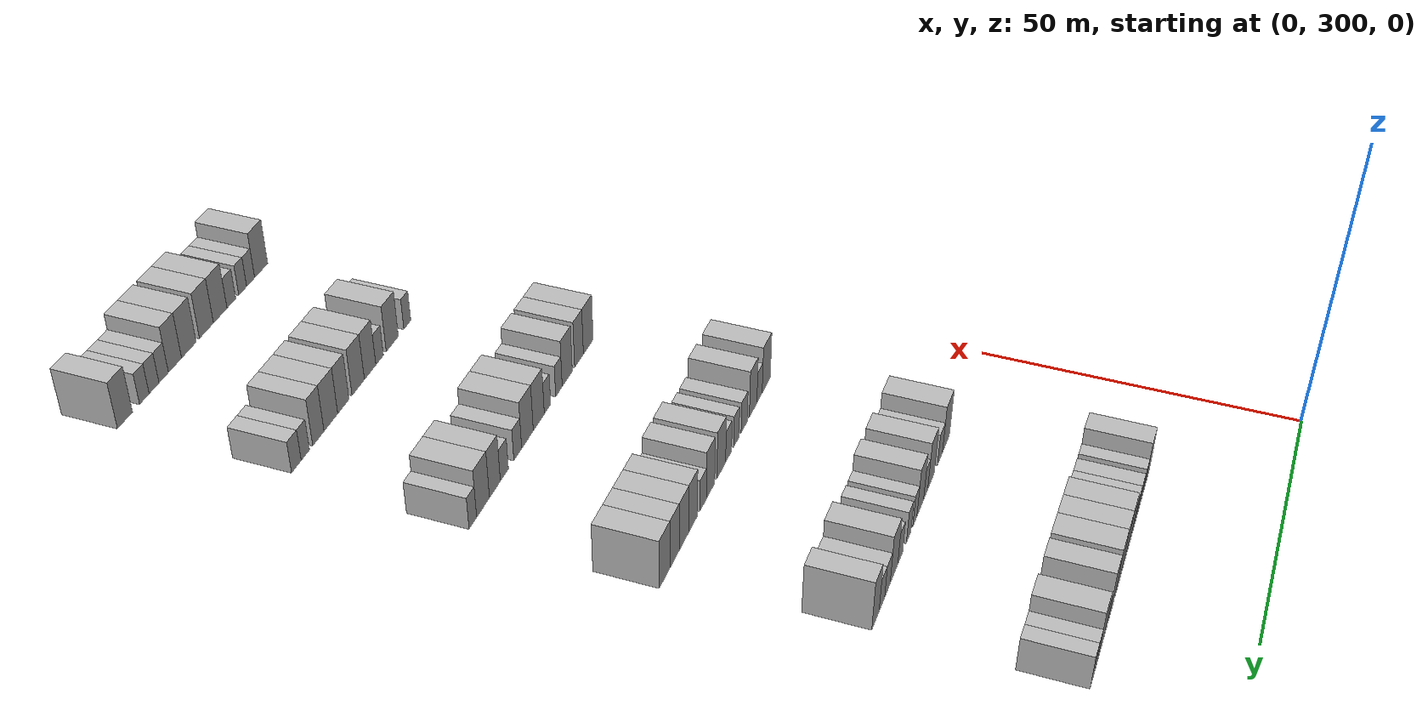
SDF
<sdf version="1.6">
 <world name="default">
  <model name="building_188">
   <static>1</static>
   <pose>25.0000 321.9324 0 0.000000 0.000000 0.000000</pose>
   <link name="link">
    <pose>0 0 4.50 0 0 0</pose>
    <collision name="collision"><geometry><box><size>10.0000 3.8410 9.0000</size></box></geometry></collision>
    <visual name="visual">
     <cast_shadows>0</cast_shadows>
     <geometry><box><size>10.0000 3.8410 9.0000</size></box></geometry>
     <material>
      <script>
       <uri>model://HANNAS_wall/materials/scripts</uri>
       <uri>model://HANNAS_wall/materials/textures</uri>
       <name>vrc/HANNAS_wall</name>
      </script>
     </material>
    </visual>
   </link>
  </model>
  <model name="building_189">
   <static>1</static>
   <pose>25.0000 325.0647 0 0.000000 0.000000 0.000000</pose>
   <link name="link">
    <pose>0 0 3.00 0 0 0</pose>
    <collision name="collision"><geometry><box><size>10.0000 2.4237 6.0000</size></box></geometry></collision>
    <visual name="visual">
     <cast_shadows>0</cast_shadows>
     <geometry><box><size>10.0000 2.4237 6.0000</size></box></geometry>
     <material>
      <script>
       <uri>model://HANNAS_wall/materials/scripts</uri>
       <uri>model://HANNAS_wall/materials/textures</uri>
       <name>vrc/HANNAS_wall</name>
      </script>
     </material>
    </visual>
   </link>
  </model>
  <model name="building_190">
   <static>1</static>
   <pose>25.0000 328.6824 0 0.000000 0.000000 0.000000</pose>
   <link name="link">
    <pose>0 0 3.00 0 0 0</pose>
    <collision name="collision"><geometry><box><size>10.0000 2.8117 6.0000</size></box></geometry></collision>
    <visual name="visual">
     <cast_shadows>0</cast_shadows>
     <geometry><box><size>10.0000 2.8117 6.0000</size></box></geometry>
     <material>
      <script>
       <uri>model://HANNAS_wall/materials/scripts</uri>
       <uri>model://HANNAS_wall/materials/textures</uri>
       <name>vrc/HANNAS_wall</name>
      </script>
     </material>
    </visual>
   </link>
  </model>
  <model name="building_191">
   <static>1</static>
   <pose>25.0000 331.3375 0 0.000000 0.000000 0.000000</pose>
   <link name="link">
    <pose>0 0 3.00 0 0 0</pose>
    <collision name="collision"><geometry><box><size>10.0000 2.4985 6.0000</size></box></geometry></collision>
    <visual name="visual">
     <cast_shadows>0</cast_shadows>
     <geometry><box><size>10.0000 2.4985 6.0000</size></box></geometry>
     <material>
      <script>
       <uri>model://HANNAS_wall/materials/scripts</uri>
       <uri>model://HANNAS_wall/materials/textures</uri>
       <name>vrc/HANNAS_wall</name>
      </script>
     </material>
    </visual>
   </link>
  </model>
  <model name="building_192">
   <static>1</static>
   <pose>25.0000 333.8884 0 0.000000 0.000000 0.000000</pose>
   <link name="link">
    <pose>0 0 3.00 0 0 0</pose>
    <collision name="collision"><geometry><box><size>10.0000 2.6032 6.0000</size></box></geometry></collision>
    <visual name="visual">
     <cast_shadows>0</cast_shadows>
     <geometry><box><size>10.0000 2.6032 6.0000</size></box></geometry>
     <material>
      <script>
       <uri>model://HANNAS_wall/materials/scripts</uri>
       <uri>model://HANNAS_wall/materials/textures</uri>
       <name>vrc/HANNAS_wall</name>
      </script>
     </material>
    </visual>
   </link>
  </model>
  <model name="building_193">
   <static>1</static>
   <pose>25.0000 337.1833 0 0.000000 0.000000 0.000000</pose>
   <link name="link">
    <pose>0 0 4.50 0 0 0</pose>
    <collision name="collision"><geometry><box><size>10.0000 3.9865 9.0000</size></box></geometry></collision>
    <visual name="visual">
     <cast_shadows>0</cast_shadows>
     <geometry><box><size>10.0000 3.9865 9.0000</size></box></geometry>
     <material>
      <script>
       <uri>model://HANNAS_wall/materials/scripts</uri>
       <uri>model://HANNAS_wall/materials/textures</uri>
       <name>vrc/HANNAS_wall</name>
      </script>
     </material>
    </visual>
   </link>
  </model>
  <model name="building_194">
   <static>1</static>
   <pose>25.0000 341.1651 0 0.000000 0.000000 0.000000</pose>
   <link name="link">
    <pose>0 0 4.50 0 0 0</pose>
    <collision name="collision"><geometry><box><size>10.0000 3.9771 9.0000</size></box></geometry></collision>
    <visual name="visual">
     <cast_shadows>0</cast_shadows>
     <geometry><box><size>10.0000 3.9771 9.0000</size></box></geometry>
     <material>
      <script>
       <uri>model://HANNAS_wall/materials/scripts</uri>
       <uri>model://HANNAS_wall/materials/textures</uri>
       <name>vrc/HANNAS_wall</name>
      </script>
     </material>
    </visual>
   </link>
  </model>
  <model name="building_195">
   <static>1</static>
   <pose>25.0000 345.3907 0 0.000000 0.000000 0.000000</pose>
   <link name="link">
    <pose>0 0 4.50 0 0 0</pose>
    <collision name="collision"><geometry><box><size>10.0000 4.4739 9.0000</size></box></geometry></collision>
    <visual name="visual">
     <cast_shadows>0</cast_shadows>
     <geometry><box><size>10.0000 4.4739 9.0000</size></box></geometry>
     <material>
      <script>
       <uri>model://HANNAS_wall/materials/scripts</uri>
       <uri>model://HANNAS_wall/materials/textures</uri>
       <name>vrc/HANNAS_wall</name>
      </script>
     </material>
    </visual>
   </link>
  </model>
  <model name="building_196">
   <static>1</static>
   <pose>25.0000 350.5419 0 0.000000 0.000000 0.000000</pose>
   <link name="link">
    <pose>0 0 4.50 0 0 0</pose>
    <collision name="collision"><geometry><box><size>10.0000 3.8285 9.0000</size></box></geometry></collision>
    <visual name="visual">
     <cast_shadows>0</cast_shadows>
     <geometry><box><size>10.0000 3.8285 9.0000</size></box></geometry>
     <material>
      <script>
       <uri>model://HANNAS_wall/materials/scripts</uri>
       <uri>model://HANNAS_wall/materials/textures</uri>
       <name>vrc/HANNAS_wall</name>
      </script>
     </material>
    </visual>
   </link>
  </model>
  <model name="building_197">
   <static>1</static>
   <pose>25.0000 354.7625 0 0.000000 0.000000 0.000000</pose>
   <link name="link">
    <pose>0 0 3.00 0 0 0</pose>
    <collision name="collision"><geometry><box><size>10.0000 2.6127 6.0000</size></box></geometry></collision>
    <visual name="visual">
     <cast_shadows>0</cast_shadows>
     <geometry><box><size>10.0000 2.6127 6.0000</size></box></geometry>
     <material>
      <script>
       <uri>model://HANNAS_wall/materials/scripts</uri>
       <uri>model://HANNAS_wall/materials/textures</uri>
       <name>vrc/HANNAS_wall</name>
      </script>
     </material>
    </visual>
   </link>
  </model>
  <model name="building_198">
   <static>1</static>
   <pose>25.0000 358.1969 0 0.000000 0.000000 0.000000</pose>
   <link name="link">
    <pose>0 0 4.50 0 0 0</pose>
    <collision name="collision"><geometry><box><size>10.0000 4.2560 9.0000</size></box></geometry></collision>
    <visual name="visual">
     <cast_shadows>0</cast_shadows>
     <geometry><box><size>10.0000 4.2560 9.0000</size></box></geometry>
     <material>
      <script>
       <uri>model://HANNAS_wall/materials/scripts</uri>
       <uri>model://HANNAS_wall/materials/textures</uri>
       <name>vrc/HANNAS_wall</name>
      </script>
     </material>
    </visual>
   </link>
  </model>
  <model name="building_199">
   <static>1</static>
   <pose>25.0000 361.6335 0 0.000000 0.000000 0.000000</pose>
   <link name="link">
    <pose>0 0 3.00 0 0 0</pose>
    <collision name="collision"><geometry><box><size>10.0000 2.6173 6.0000</size></box></geometry></collision>
    <visual name="visual">
     <cast_shadows>0</cast_shadows>
     <geometry><box><size>10.0000 2.6173 6.0000</size></box></geometry>
     <material>
      <script>
       <uri>model://HANNAS_wall/materials/scripts</uri>
       <uri>model://HANNAS_wall/materials/textures</uri>
       <name>vrc/HANNAS_wall</name>
      </script>
     </material>
    </visual>
   </link>
  </model>
  <model name="building_200">
   <static>1</static>
   <pose>25.0000 364.3236 0 0.000000 0.000000 0.000000</pose>
   <link name="link">
    <pose>0 0 3.00 0 0 0</pose>
    <collision name="collision"><geometry><box><size>10.0000 2.7627 6.0000</size></box></geometry></collision>
    <visual name="visual">
     <cast_shadows>0</cast_shadows>
     <geometry><box><size>10.0000 2.7627 6.0000</size></box></geometry>
     <material>
      <script>
       <uri>model://HANNAS_wall/materials/scripts</uri>
       <uri>model://HANNAS_wall/materials/textures</uri>
       <name>vrc/HANNAS_wall</name>
      </script>
     </material>
    </visual>
   </link>
  </model>
  <model name="building_427">
   <static>1</static>
   <pose>55.0000 323.9059 0 0.000000 0.000000 0.000000</pose>
   <link name="link">
    <pose>0 0 4.50 0 0 0</pose>
    <collision name="collision"><geometry><box><size>10.0000 4.3552 9.0000</size></box></geometry></collision>
    <visual name="visual">
     <cast_shadows>0</cast_shadows>
     <geometry><box><size>10.0000 4.3552 9.0000</size></box></geometry>
     <material>
      <script>
       <uri>model://HANNAS_wall/materials/scripts</uri>
       <uri>model://HANNAS_wall/materials/textures</uri>
       <name>vrc/HANNAS_wall</name>
      </script>
     </material>
    </visual>
   </link>
  </model>
  <model name="building_428">
   <static>1</static>
   <pose>55.0000 327.5647 0 0.000000 0.000000 0.000000</pose>
   <link name="link">
    <pose>0 0 3.00 0 0 0</pose>
    <collision name="collision"><geometry><box><size>10.0000 2.9624 6.0000</size></box></geometry></collision>
    <visual name="visual">
     <cast_shadows>0</cast_shadows>
     <geometry><box><size>10.0000 2.9624 6.0000</size></box></geometry>
     <material>
      <script>
       <uri>model://HANNAS_wall/materials/scripts</uri>
       <uri>model://HANNAS_wall/materials/textures</uri>
       <name>vrc/HANNAS_wall</name>
      </script>
     </material>
    </visual>
   </link>
  </model>
  <model name="building_429">
   <static>1</static>
   <pose>55.0000 332.9562 0 0.000000 0.000000 0.000000</pose>
   <link name="link">
    <pose>0 0 4.50 0 0 0</pose>
    <collision name="collision"><geometry><box><size>10.0000 3.8205 9.0000</size></box></geometry></collision>
    <visual name="visual">
     <cast_shadows>0</cast_shadows>
     <geometry><box><size>10.0000 3.8205 9.0000</size></box></geometry>
     <material>
      <script>
       <uri>model://HANNAS_wall/materials/scripts</uri>
       <uri>model://HANNAS_wall/materials/textures</uri>
       <name>vrc/HANNAS_wall</name>
      </script>
     </material>
    </visual>
   </link>
  </model>
  <model name="building_430">
   <static>1</static>
   <pose>55.0000 336.0881 0 0.000000 0.000000 0.000000</pose>
   <link name="link">
    <pose>0 0 3.00 0 0 0</pose>
    <collision name="collision"><geometry><box><size>10.0000 2.4435 6.0000</size></box></geometry></collision>
    <visual name="visual">
     <cast_shadows>0</cast_shadows>
     <geometry><box><size>10.0000 2.4435 6.0000</size></box></geometry>
     <material>
      <script>
       <uri>model://HANNAS_wall/materials/scripts</uri>
       <uri>model://HANNAS_wall/materials/textures</uri>
       <name>vrc/HANNAS_wall</name>
      </script>
     </material>
    </visual>
   </link>
  </model>
  <model name="building_431">
   <static>1</static>
   <pose>55.0000 339.2111 0 0.000000 0.000000 0.000000</pose>
   <link name="link">
    <pose>0 0 4.50 0 0 0</pose>
    <collision name="collision"><geometry><box><size>10.0000 3.8025 9.0000</size></box></geometry></collision>
    <visual name="visual">
     <cast_shadows>0</cast_shadows>
     <geometry><box><size>10.0000 3.8025 9.0000</size></box></geometry>
     <material>
      <script>
       <uri>model://HANNAS_wall/materials/scripts</uri>
       <uri>model://HANNAS_wall/materials/textures</uri>
       <name>vrc/HANNAS_wall</name>
      </script>
     </material>
    </visual>
   </link>
  </model>
  <model name="building_432">
   <static>1</static>
   <pose>55.0000 342.3207 0 0.000000 0.000000 0.000000</pose>
   <link name="link">
    <pose>0 0 3.00 0 0 0</pose>
    <collision name="collision"><geometry><box><size>10.0000 2.4166 6.0000</size></box></geometry></collision>
    <visual name="visual">
     <cast_shadows>0</cast_shadows>
     <geometry><box><size>10.0000 2.4166 6.0000</size></box></geometry>
     <material>
      <script>
       <uri>model://HANNAS_wall/materials/scripts</uri>
       <uri>model://HANNAS_wall/materials/textures</uri>
       <name>vrc/HANNAS_wall</name>
      </script>
     </material>
    </visual>
   </link>
  </model>
  <model name="building_433">
   <static>1</static>
   <pose>55.0000 345.7900 0 0.000000 0.000000 0.000000</pose>
   <link name="link">
    <pose>0 0 3.00 0 0 0</pose>
    <collision name="collision"><geometry><box><size>10.0000 2.5220 6.0000</size></box></geometry></collision>
    <visual name="visual">
     <cast_shadows>0</cast_shadows>
     <geometry><box><size>10.0000 2.5220 6.0000</size></box></geometry>
     <material>
      <script>
       <uri>model://HANNAS_wall/materials/scripts</uri>
       <uri>model://HANNAS_wall/materials/textures</uri>
       <name>vrc/HANNAS_wall</name>
      </script>
     </material>
    </visual>
   </link>
  </model>
  <model name="building_434">
   <static>1</static>
   <pose>55.0000 350.3980 0 0.000000 0.000000 0.000000</pose>
   <link name="link">
    <pose>0 0 3.00 0 0 0</pose>
    <collision name="collision"><geometry><box><size>10.0000 2.6938 6.0000</size></box></geometry></collision>
    <visual name="visual">
     <cast_shadows>0</cast_shadows>
     <geometry><box><size>10.0000 2.6938 6.0000</size></box></geometry>
     <material>
      <script>
       <uri>model://HANNAS_wall/materials/scripts</uri>
       <uri>model://HANNAS_wall/materials/textures</uri>
       <name>vrc/HANNAS_wall</name>
      </script>
     </material>
    </visual>
   </link>
  </model>
  <model name="building_435">
   <static>1</static>
   <pose>55.0000 353.7789 0 0.000000 0.000000 0.000000</pose>
   <link name="link">
    <pose>0 0 4.50 0 0 0</pose>
    <collision name="collision"><geometry><box><size>10.0000 4.0680 9.0000</size></box></geometry></collision>
    <visual name="visual">
     <cast_shadows>0</cast_shadows>
     <geometry><box><size>10.0000 4.0680 9.0000</size></box></geometry>
     <material>
      <script>
       <uri>model://HANNAS_wall/materials/scripts</uri>
       <uri>model://HANNAS_wall/materials/textures</uri>
       <name>vrc/HANNAS_wall</name>
      </script>
     </material>
    </visual>
   </link>
  </model>
  <model name="building_436">
   <static>1</static>
   <pose>55.0000 357.2287 0 0.000000 0.000000 0.000000</pose>
   <link name="link">
    <pose>0 0 3.00 0 0 0</pose>
    <collision name="collision"><geometry><box><size>10.0000 2.8316 6.0000</size></box></geometry></collision>
    <visual name="visual">
     <cast_shadows>0</cast_shadows>
     <geometry><box><size>10.0000 2.8316 6.0000</size></box></geometry>
     <material>
      <script>
       <uri>model://HANNAS_wall/materials/scripts</uri>
       <uri>model://HANNAS_wall/materials/textures</uri>
       <name>vrc/HANNAS_wall</name>
      </script>
     </material>
    </visual>
   </link>
  </model>
  <model name="building_437">
   <static>1</static>
   <pose>55.0000 360.0771 0 0.000000 0.000000 0.000000</pose>
   <link name="link">
    <pose>0 0 3.00 0 0 0</pose>
    <collision name="collision"><geometry><box><size>10.0000 2.8652 6.0000</size></box></geometry></collision>
    <visual name="visual">
     <cast_shadows>0</cast_shadows>
     <geometry><box><size>10.0000 2.8652 6.0000</size></box></geometry>
     <material>
      <script>
       <uri>model://HANNAS_wall/materials/scripts</uri>
       <uri>model://HANNAS_wall/materials/textures</uri>
       <name>vrc/HANNAS_wall</name>
      </script>
     </material>
    </visual>
   </link>
  </model>
  <model name="building_438">
   <static>1</static>
   <pose>55.0000 363.3722 0 0.000000 0.000000 0.000000</pose>
   <link name="link">
    <pose>0 0 4.50 0 0 0</pose>
    <collision name="collision"><geometry><box><size>10.0000 3.7250 9.0000</size></box></geometry></collision>
    <visual name="visual">
     <cast_shadows>0</cast_shadows>
     <geometry><box><size>10.0000 3.7250 9.0000</size></box></geometry>
     <material>
      <script>
       <uri>model://HANNAS_wall/materials/scripts</uri>
       <uri>model://HANNAS_wall/materials/textures</uri>
       <name>vrc/HANNAS_wall</name>
      </script>
     </material>
    </visual>
   </link>
  </model>
  <model name="building_647">
   <static>1</static>
   <pose>85.0000 319.7177 0 0.000000 0.000000 0.000000</pose>
   <link name="link">
    <pose>0 0 4.50 0 0 0</pose>
    <collision name="collision"><geometry><box><size>10.0000 4.1241 9.0000</size></box></geometry></collision>
    <visual name="visual">
     <cast_shadows>0</cast_shadows>
     <geometry><box><size>10.0000 4.1241 9.0000</size></box></geometry>
     <material>
      <script>
       <uri>model://HANNAS_wall/materials/scripts</uri>
       <uri>model://HANNAS_wall/materials/textures</uri>
       <name>vrc/HANNAS_wall</name>
      </script>
     </material>
    </visual>
   </link>
  </model>
  <model name="building_648">
   <static>1</static>
   <pose>85.0000 323.0876 0 0.000000 0.000000 0.000000</pose>
   <link name="link">
    <pose>0 0 3.00 0 0 0</pose>
    <collision name="collision"><geometry><box><size>10.0000 2.6156 6.0000</size></box></geometry></collision>
    <visual name="visual">
     <cast_shadows>0</cast_shadows>
     <geometry><box><size>10.0000 2.6156 6.0000</size></box></geometry>
     <material>
      <script>
       <uri>model://HANNAS_wall/materials/scripts</uri>
       <uri>model://HANNAS_wall/materials/textures</uri>
       <name>vrc/HANNAS_wall</name>
      </script>
     </material>
    </visual>
   </link>
  </model>
  <model name="building_649">
   <static>1</static>
   <pose>85.0000 326.2399 0 0.000000 0.000000 0.000000</pose>
   <link name="link">
    <pose>0 0 4.50 0 0 0</pose>
    <collision name="collision"><geometry><box><size>10.0000 3.6889 9.0000</size></box></geometry></collision>
    <visual name="visual">
     <cast_shadows>0</cast_shadows>
     <geometry><box><size>10.0000 3.6889 9.0000</size></box></geometry>
     <material>
      <script>
       <uri>model://HANNAS_wall/materials/scripts</uri>
       <uri>model://HANNAS_wall/materials/textures</uri>
       <name>vrc/HANNAS_wall</name>
      </script>
     </material>
    </visual>
   </link>
  </model>
  <model name="building_650">
   <static>1</static>
   <pose>85.0000 330.5644 0 0.000000 0.000000 0.000000</pose>
   <link name="link">
    <pose>0 0 3.00 0 0 0</pose>
    <collision name="collision"><geometry><box><size>10.0000 2.9602 6.0000</size></box></geometry></collision>
    <visual name="visual">
     <cast_shadows>0</cast_shadows>
     <geometry><box><size>10.0000 2.9602 6.0000</size></box></geometry>
     <material>
      <script>
       <uri>model://HANNAS_wall/materials/scripts</uri>
       <uri>model://HANNAS_wall/materials/textures</uri>
       <name>vrc/HANNAS_wall</name>
      </script>
     </material>
    </visual>
   </link>
  </model>
  <model name="building_651">
   <static>1</static>
   <pose>85.0000 334.2911 0 0.000000 0.000000 0.000000</pose>
   <link name="link">
    <pose>0 0 3.00 0 0 0</pose>
    <collision name="collision"><geometry><box><size>10.0000 2.4932 6.0000</size></box></geometry></collision>
    <visual name="visual">
     <cast_shadows>0</cast_shadows>
     <geometry><box><size>10.0000 2.4932 6.0000</size></box></geometry>
     <material>
      <script>
       <uri>model://HANNAS_wall/materials/scripts</uri>
       <uri>model://HANNAS_wall/materials/textures</uri>
       <name>vrc/HANNAS_wall</name>
      </script>
     </material>
    </visual>
   </link>
  </model>
  <model name="building_652">
   <static>1</static>
   <pose>85.0000 337.9130 0 0.000000 0.000000 0.000000</pose>
   <link name="link">
    <pose>0 0 3.00 0 0 0</pose>
    <collision name="collision"><geometry><box><size>10.0000 2.7507 6.0000</size></box></geometry></collision>
    <visual name="visual">
     <cast_shadows>0</cast_shadows>
     <geometry><box><size>10.0000 2.7507 6.0000</size></box></geometry>
     <material>
      <script>
       <uri>model://HANNAS_wall/materials/scripts</uri>
       <uri>model://HANNAS_wall/materials/textures</uri>
       <name>vrc/HANNAS_wall</name>
      </script>
     </material>
    </visual>
   </link>
  </model>
  <model name="building_653">
   <static>1</static>
   <pose>85.0000 341.2763 0 0.000000 0.000000 0.000000</pose>
   <link name="link">
    <pose>0 0 4.50 0 0 0</pose>
    <collision name="collision"><geometry><box><size>10.0000 3.9759 9.0000</size></box></geometry></collision>
    <visual name="visual">
     <cast_shadows>0</cast_shadows>
     <geometry><box><size>10.0000 3.9759 9.0000</size></box></geometry>
     <material>
      <script>
       <uri>model://HANNAS_wall/materials/scripts</uri>
       <uri>model://HANNAS_wall/materials/textures</uri>
       <name>vrc/HANNAS_wall</name>
      </script>
     </material>
    </visual>
   </link>
  </model>
  <model name="building_654">
   <static>1</static>
   <pose>85.0000 346.1178 0 0.000000 0.000000 0.000000</pose>
   <link name="link">
    <pose>0 0 4.50 0 0 0</pose>
    <collision name="collision"><geometry><box><size>10.0000 3.7070 9.0000</size></box></geometry></collision>
    <visual name="visual">
     <cast_shadows>0</cast_shadows>
     <geometry><box><size>10.0000 3.7070 9.0000</size></box></geometry>
     <material>
      <script>
       <uri>model://HANNAS_wall/materials/scripts</uri>
       <uri>model://HANNAS_wall/materials/textures</uri>
       <name>vrc/HANNAS_wall</name>
      </script>
     </material>
    </visual>
   </link>
  </model>
  <model name="building_655">
   <static>1</static>
   <pose>85.0000 349.4005 0 0.000000 0.000000 0.000000</pose>
   <link name="link">
    <pose>0 0 3.00 0 0 0</pose>
    <collision name="collision"><geometry><box><size>10.0000 2.8584 6.0000</size></box></geometry></collision>
    <visual name="visual">
     <cast_shadows>0</cast_shadows>
     <geometry><box><size>10.0000 2.8584 6.0000</size></box></geometry>
     <material>
      <script>
       <uri>model://HANNAS_wall/materials/scripts</uri>
       <uri>model://HANNAS_wall/materials/textures</uri>
       <name>vrc/HANNAS_wall</name>
      </script>
     </material>
    </visual>
   </link>
  </model>
  <model name="building_656">
   <static>1</static>
   <pose>85.0000 353.6460 0 0.000000 0.000000 0.000000</pose>
   <link name="link">
    <pose>0 0 4.50 0 0 0</pose>
    <collision name="collision"><geometry><box><size>10.0000 3.6326 9.0000</size></box></geometry></collision>
    <visual name="visual">
     <cast_shadows>0</cast_shadows>
     <geometry><box><size>10.0000 3.6326 9.0000</size></box></geometry>
     <material>
      <script>
       <uri>model://HANNAS_wall/materials/scripts</uri>
       <uri>model://HANNAS_wall/materials/textures</uri>
       <name>vrc/HANNAS_wall</name>
      </script>
     </material>
    </visual>
   </link>
  </model>
  <model name="building_657">
   <static>1</static>
   <pose>85.0000 357.5191 0 0.000000 0.000000 0.000000</pose>
   <link name="link">
    <pose>0 0 4.50 0 0 0</pose>
    <collision name="collision"><geometry><box><size>10.0000 4.1134 9.0000</size></box></geometry></collision>
    <visual name="visual">
     <cast_shadows>0</cast_shadows>
     <geometry><box><size>10.0000 4.1134 9.0000</size></box></geometry>
     <material>
      <script>
       <uri>model://HANNAS_wall/materials/scripts</uri>
       <uri>model://HANNAS_wall/materials/textures</uri>
       <name>vrc/HANNAS_wall</name>
      </script>
     </material>
    </visual>
   </link>
  </model>
  <model name="building_658">
   <static>1</static>
   <pose>85.0000 361.4610 0 0.000000 0.000000 0.000000</pose>
   <link name="link">
    <pose>0 0 4.50 0 0 0</pose>
    <collision name="collision"><geometry><box><size>10.0000 3.7704 9.0000</size></box></geometry></collision>
    <visual name="visual">
     <cast_shadows>0</cast_shadows>
     <geometry><box><size>10.0000 3.7704 9.0000</size></box></geometry>
     <material>
      <script>
       <uri>model://HANNAS_wall/materials/scripts</uri>
       <uri>model://HANNAS_wall/materials/textures</uri>
       <name>vrc/HANNAS_wall</name>
      </script>
     </material>
    </visual>
   </link>
  </model>
  <model name="building_659">
   <static>1</static>
   <pose>85.0000 365.4988 0 0.000000 0.000000 0.000000</pose>
   <link name="link">
    <pose>0 0 4.50 0 0 0</pose>
    <collision name="collision"><geometry><box><size>10.0000 4.3052 9.0000</size></box></geometry></collision>
    <visual name="visual">
     <cast_shadows>0</cast_shadows>
     <geometry><box><size>10.0000 4.3052 9.0000</size></box></geometry>
     <material>
      <script>
       <uri>model://HANNAS_wall/materials/scripts</uri>
       <uri>model://HANNAS_wall/materials/textures</uri>
       <name>vrc/HANNAS_wall</name>
      </script>
     </material>
    </visual>
   </link>
  </model>
  <model name="building_872">
   <static>1</static>
   <pose>115.0000 320.1477 0 0.000000 0.000000 0.000000</pose>
   <link name="link">
    <pose>0 0 4.50 0 0 0</pose>
    <collision name="collision"><geometry><box><size>10.0000 4.1419 9.0000</size></box></geometry></collision>
    <visual name="visual">
     <cast_shadows>0</cast_shadows>
     <geometry><box><size>10.0000 4.1419 9.0000</size></box></geometry>
     <material>
      <script>
       <uri>model://HANNAS_wall/materials/scripts</uri>
       <uri>model://HANNAS_wall/materials/textures</uri>
       <name>vrc/HANNAS_wall</name>
      </script>
     </material>
    </visual>
   </link>
  </model>
  <model name="building_873">
   <static>1</static>
   <pose>115.0000 324.0434 0 0.000000 0.000000 0.000000</pose>
   <link name="link">
    <pose>0 0 4.50 0 0 0</pose>
    <collision name="collision"><geometry><box><size>10.0000 3.6495 9.0000</size></box></geometry></collision>
    <visual name="visual">
     <cast_shadows>0</cast_shadows>
     <geometry><box><size>10.0000 3.6495 9.0000</size></box></geometry>
     <material>
      <script>
       <uri>model://HANNAS_wall/materials/scripts</uri>
       <uri>model://HANNAS_wall/materials/textures</uri>
       <name>vrc/HANNAS_wall</name>
      </script>
     </material>
    </visual>
   </link>
  </model>
  <model name="building_874">
   <static>1</static>
   <pose>115.0000 328.9407 0 0.000000 0.000000 0.000000</pose>
   <link name="link">
    <pose>0 0 4.50 0 0 0</pose>
    <collision name="collision"><geometry><box><size>10.0000 4.1451 9.0000</size></box></geometry></collision>
    <visual name="visual">
     <cast_shadows>0</cast_shadows>
     <geometry><box><size>10.0000 4.1451 9.0000</size></box></geometry>
     <material>
      <script>
       <uri>model://HANNAS_wall/materials/scripts</uri>
       <uri>model://HANNAS_wall/materials/textures</uri>
       <name>vrc/HANNAS_wall</name>
      </script>
     </material>
    </visual>
   </link>
  </model>
  <model name="building_875">
   <static>1</static>
   <pose>115.0000 332.3251 0 0.000000 0.000000 0.000000</pose>
   <link name="link">
    <pose>0 0 3.00 0 0 0</pose>
    <collision name="collision"><geometry><box><size>10.0000 2.6237 6.0000</size></box></geometry></collision>
    <visual name="visual">
     <cast_shadows>0</cast_shadows>
     <geometry><box><size>10.0000 2.6237 6.0000</size></box></geometry>
     <material>
      <script>
       <uri>model://HANNAS_wall/materials/scripts</uri>
       <uri>model://HANNAS_wall/materials/textures</uri>
       <name>vrc/HANNAS_wall</name>
      </script>
     </material>
    </visual>
   </link>
  </model>
  <model name="building_876">
   <static>1</static>
   <pose>115.0000 336.8960 0 0.000000 0.000000 0.000000</pose>
   <link name="link">
    <pose>0 0 3.00 0 0 0</pose>
    <collision name="collision"><geometry><box><size>10.0000 2.5181 6.0000</size></box></geometry></collision>
    <visual name="visual">
     <cast_shadows>0</cast_shadows>
     <geometry><box><size>10.0000 2.5181 6.0000</size></box></geometry>
     <material>
      <script>
       <uri>model://HANNAS_wall/materials/scripts</uri>
       <uri>model://HANNAS_wall/materials/textures</uri>
       <name>vrc/HANNAS_wall</name>
      </script>
     </material>
    </visual>
   </link>
  </model>
  <model name="building_877">
   <static>1</static>
   <pose>115.0000 340.2975 0 0.000000 0.000000 0.000000</pose>
   <link name="link">
    <pose>0 0 4.50 0 0 0</pose>
    <collision name="collision"><geometry><box><size>10.0000 4.2847 9.0000</size></box></geometry></collision>
    <visual name="visual">
     <cast_shadows>0</cast_shadows>
     <geometry><box><size>10.0000 4.2847 9.0000</size></box></geometry>
     <material>
      <script>
       <uri>model://HANNAS_wall/materials/scripts</uri>
       <uri>model://HANNAS_wall/materials/textures</uri>
       <name>vrc/HANNAS_wall</name>
      </script>
     </material>
    </visual>
   </link>
  </model>
  <model name="building_878">
   <static>1</static>
   <pose>115.0000 344.6491 0 0.000000 0.000000 0.000000</pose>
   <link name="link">
    <pose>0 0 4.50 0 0 0</pose>
    <collision name="collision"><geometry><box><size>10.0000 4.4185 9.0000</size></box></geometry></collision>
    <visual name="visual">
     <cast_shadows>0</cast_shadows>
     <geometry><box><size>10.0000 4.4185 9.0000</size></box></geometry>
     <material>
      <script>
       <uri>model://HANNAS_wall/materials/scripts</uri>
       <uri>model://HANNAS_wall/materials/textures</uri>
       <name>vrc/HANNAS_wall</name>
      </script>
     </material>
    </visual>
   </link>
  </model>
  <model name="building_879">
   <static>1</static>
   <pose>115.0000 348.3292 0 0.000000 0.000000 0.000000</pose>
   <link name="link">
    <pose>0 0 3.00 0 0 0</pose>
    <collision name="collision"><geometry><box><size>10.0000 2.9419 6.0000</size></box></geometry></collision>
    <visual name="visual">
     <cast_shadows>0</cast_shadows>
     <geometry><box><size>10.0000 2.9419 6.0000</size></box></geometry>
     <material>
      <script>
       <uri>model://HANNAS_wall/materials/scripts</uri>
       <uri>model://HANNAS_wall/materials/textures</uri>
       <name>vrc/HANNAS_wall</name>
      </script>
     </material>
    </visual>
   </link>
  </model>
  <model name="building_880">
   <static>1</static>
   <pose>115.0000 353.2696 0 0.000000 0.000000 0.000000</pose>
   <link name="link">
    <pose>0 0 3.00 0 0 0</pose>
    <collision name="collision"><geometry><box><size>10.0000 2.9389 6.0000</size></box></geometry></collision>
    <visual name="visual">
     <cast_shadows>0</cast_shadows>
     <geometry><box><size>10.0000 2.9389 6.0000</size></box></geometry>
     <material>
      <script>
       <uri>model://HANNAS_wall/materials/scripts</uri>
       <uri>model://HANNAS_wall/materials/textures</uri>
       <name>vrc/HANNAS_wall</name>
      </script>
     </material>
    </visual>
   </link>
  </model>
  <model name="building_881">
   <static>1</static>
   <pose>115.0000 356.6893 0 0.000000 0.000000 0.000000</pose>
   <link name="link">
    <pose>0 0 4.50 0 0 0</pose>
    <collision name="collision"><geometry><box><size>10.0000 3.9005 9.0000</size></box></geometry></collision>
    <visual name="visual">
     <cast_shadows>0</cast_shadows>
     <geometry><box><size>10.0000 3.9005 9.0000</size></box></geometry>
     <material>
      <script>
       <uri>model://HANNAS_wall/materials/scripts</uri>
       <uri>model://HANNAS_wall/materials/textures</uri>
       <name>vrc/HANNAS_wall</name>
      </script>
     </material>
    </visual>
   </link>
  </model>
  <model name="building_882">
   <static>1</static>
   <pose>115.0000 360.8888 0 0.000000 0.000000 0.000000</pose>
   <link name="link">
    <pose>0 0 4.50 0 0 0</pose>
    <collision name="collision"><geometry><box><size>10.0000 4.4984 9.0000</size></box></geometry></collision>
    <visual name="visual">
     <cast_shadows>0</cast_shadows>
     <geometry><box><size>10.0000 4.4984 9.0000</size></box></geometry>
     <material>
      <script>
       <uri>model://HANNAS_wall/materials/scripts</uri>
       <uri>model://HANNAS_wall/materials/textures</uri>
       <name>vrc/HANNAS_wall</name>
      </script>
     </material>
    </visual>
   </link>
  </model>
  <model name="building_883">
   <static>1</static>
   <pose>115.0000 364.4516 0 0.000000 0.000000 0.000000</pose>
   <link name="link">
    <pose>0 0 3.00 0 0 0</pose>
    <collision name="collision"><geometry><box><size>10.0000 2.6271 6.0000</size></box></geometry></collision>
    <visual name="visual">
     <cast_shadows>0</cast_shadows>
     <geometry><box><size>10.0000 2.6271 6.0000</size></box></geometry>
     <material>
      <script>
       <uri>model://HANNAS_wall/materials/scripts</uri>
       <uri>model://HANNAS_wall/materials/textures</uri>
       <name>vrc/HANNAS_wall</name>
      </script>
     </material>
    </visual>
   </link>
  </model>
  <model name="building_1106">
   <static>1</static>
   <pose>145.0000 324.8205 0 0.000000 0.000000 0.000000</pose>
   <link name="link">
    <pose>0 0 3.00 0 0 0</pose>
    <collision name="collision"><geometry><box><size>10.0000 2.5546 6.0000</size></box></geometry></collision>
    <visual name="visual">
     <cast_shadows>0</cast_shadows>
     <geometry><box><size>10.0000 2.5546 6.0000</size></box></geometry>
     <material>
      <script>
       <uri>model://HANNAS_wall/materials/scripts</uri>
       <uri>model://HANNAS_wall/materials/textures</uri>
       <name>vrc/HANNAS_wall</name>
      </script>
     </material>
    </visual>
   </link>
  </model>
  <model name="building_1107">
   <static>1</static>
   <pose>145.0000 330.2716 0 0.000000 0.000000 0.000000</pose>
   <link name="link">
    <pose>0 0 4.50 0 0 0</pose>
    <collision name="collision"><geometry><box><size>10.0000 4.3475 9.0000</size></box></geometry></collision>
    <visual name="visual">
     <cast_shadows>0</cast_shadows>
     <geometry><box><size>10.0000 4.3475 9.0000</size></box></geometry>
     <material>
      <script>
       <uri>model://HANNAS_wall/materials/scripts</uri>
       <uri>model://HANNAS_wall/materials/textures</uri>
       <name>vrc/HANNAS_wall</name>
      </script>
     </material>
    </visual>
   </link>
  </model>
  <model name="building_1108">
   <static>1</static>
   <pose>145.0000 334.7703 0 0.000000 0.000000 0.000000</pose>
   <link name="link">
    <pose>0 0 3.00 0 0 0</pose>
    <collision name="collision"><geometry><box><size>10.0000 2.6499 6.0000</size></box></geometry></collision>
    <visual name="visual">
     <cast_shadows>0</cast_shadows>
     <geometry><box><size>10.0000 2.6499 6.0000</size></box></geometry>
     <material>
      <script>
       <uri>model://HANNAS_wall/materials/scripts</uri>
       <uri>model://HANNAS_wall/materials/textures</uri>
       <name>vrc/HANNAS_wall</name>
      </script>
     </material>
    </visual>
   </link>
  </model>
  <model name="building_1109">
   <static>1</static>
   <pose>145.0000 338.0747 0 0.000000 0.000000 0.000000</pose>
   <link name="link">
    <pose>0 0 4.50 0 0 0</pose>
    <collision name="collision"><geometry><box><size>10.0000 3.9588 9.0000</size></box></geometry></collision>
    <visual name="visual">
     <cast_shadows>0</cast_shadows>
     <geometry><box><size>10.0000 3.9588 9.0000</size></box></geometry>
     <material>
      <script>
       <uri>model://HANNAS_wall/materials/scripts</uri>
       <uri>model://HANNAS_wall/materials/textures</uri>
       <name>vrc/HANNAS_wall</name>
      </script>
     </material>
    </visual>
   </link>
  </model>
  <model name="building_1110">
   <static>1</static>
   <pose>145.0000 342.1642 0 0.000000 0.000000 0.000000</pose>
   <link name="link">
    <pose>0 0 4.50 0 0 0</pose>
    <collision name="collision"><geometry><box><size>10.0000 4.2204 9.0000</size></box></geometry></collision>
    <visual name="visual">
     <cast_shadows>0</cast_shadows>
     <geometry><box><size>10.0000 4.2204 9.0000</size></box></geometry>
     <material>
      <script>
       <uri>model://HANNAS_wall/materials/scripts</uri>
       <uri>model://HANNAS_wall/materials/textures</uri>
       <name>vrc/HANNAS_wall</name>
      </script>
     </material>
    </visual>
   </link>
  </model>
  <model name="building_1111">
   <static>1</static>
   <pose>145.0000 347.1431 0 0.000000 0.000000 0.000000</pose>
   <link name="link">
    <pose>0 0 4.50 0 0 0</pose>
    <collision name="collision"><geometry><box><size>10.0000 3.7374 9.0000</size></box></geometry></collision>
    <visual name="visual">
     <cast_shadows>0</cast_shadows>
     <geometry><box><size>10.0000 3.7374 9.0000</size></box></geometry>
     <material>
      <script>
       <uri>model://HANNAS_wall/materials/scripts</uri>
       <uri>model://HANNAS_wall/materials/textures</uri>
       <name>vrc/HANNAS_wall</name>
      </script>
     </material>
    </visual>
   </link>
  </model>
  <model name="building_1112">
   <static>1</static>
   <pose>145.0000 351.2496 0 0.000000 0.000000 0.000000</pose>
   <link name="link">
    <pose>0 0 4.50 0 0 0</pose>
    <collision name="collision"><geometry><box><size>10.0000 4.4755 9.0000</size></box></geometry></collision>
    <visual name="visual">
     <cast_shadows>0</cast_shadows>
     <geometry><box><size>10.0000 4.4755 9.0000</size></box></geometry>
     <material>
      <script>
       <uri>model://HANNAS_wall/materials/scripts</uri>
       <uri>model://HANNAS_wall/materials/textures</uri>
       <name>vrc/HANNAS_wall</name>
      </script>
     </material>
    </visual>
   </link>
  </model>
  <model name="building_1113">
   <static>1</static>
   <pose>145.0000 355.2936 0 0.000000 0.000000 0.000000</pose>
   <link name="link">
    <pose>0 0 4.50 0 0 0</pose>
    <collision name="collision"><geometry><box><size>10.0000 3.6125 9.0000</size></box></geometry></collision>
    <visual name="visual">
     <cast_shadows>0</cast_shadows>
     <geometry><box><size>10.0000 3.6125 9.0000</size></box></geometry>
     <material>
      <script>
       <uri>model://HANNAS_wall/materials/scripts</uri>
       <uri>model://HANNAS_wall/materials/textures</uri>
       <name>vrc/HANNAS_wall</name>
      </script>
     </material>
    </visual>
   </link>
  </model>
  <model name="building_1114">
   <static>1</static>
   <pose>145.0000 359.3960 0 0.000000 0.000000 0.000000</pose>
   <link name="link">
    <pose>0 0 3.00 0 0 0</pose>
    <collision name="collision"><geometry><box><size>10.0000 2.5924 6.0000</size></box></geometry></collision>
    <visual name="visual">
     <cast_shadows>0</cast_shadows>
     <geometry><box><size>10.0000 2.5924 6.0000</size></box></geometry>
     <material>
      <script>
       <uri>model://HANNAS_wall/materials/scripts</uri>
       <uri>model://HANNAS_wall/materials/textures</uri>
       <name>vrc/HANNAS_wall</name>
      </script>
     </material>
    </visual>
   </link>
  </model>
  <model name="building_1115">
   <static>1</static>
   <pose>145.0000 362.1872 0 0.000000 0.000000 0.000000</pose>
   <link name="link">
    <pose>0 0 3.00 0 0 0</pose>
    <collision name="collision"><geometry><box><size>10.0000 2.9899 6.0000</size></box></geometry></collision>
    <visual name="visual">
     <cast_shadows>0</cast_shadows>
     <geometry><box><size>10.0000 2.9899 6.0000</size></box></geometry>
     <material>
      <script>
       <uri>model://HANNAS_wall/materials/scripts</uri>
       <uri>model://HANNAS_wall/materials/textures</uri>
       <name>vrc/HANNAS_wall</name>
      </script>
     </material>
    </visual>
   </link>
  </model>
  <model name="building_1339">
   <static>1</static>
   <pose>175.0000 319.5817 0 0.000000 0.000000 0.000000</pose>
   <link name="link">
    <pose>0 0 4.50 0 0 0</pose>
    <collision name="collision"><geometry><box><size>10.0000 4.4295 9.0000</size></box></geometry></collision>
    <visual name="visual">
     <cast_shadows>0</cast_shadows>
     <geometry><box><size>10.0000 4.4295 9.0000</size></box></geometry>
     <material>
      <script>
       <uri>model://HANNAS_wall/materials/scripts</uri>
       <uri>model://HANNAS_wall/materials/textures</uri>
       <name>vrc/HANNAS_wall</name>
      </script>
     </material>
    </visual>
   </link>
  </model>
  <model name="building_1340">
   <static>1</static>
   <pose>175.0000 323.1330 0 0.000000 0.000000 0.000000</pose>
   <link name="link">
    <pose>0 0 3.00 0 0 0</pose>
    <collision name="collision"><geometry><box><size>10.0000 2.6730 6.0000</size></box></geometry></collision>
    <visual name="visual">
     <cast_shadows>0</cast_shadows>
     <geometry><box><size>10.0000 2.6730 6.0000</size></box></geometry>
     <material>
      <script>
       <uri>model://HANNAS_wall/materials/scripts</uri>
       <uri>model://HANNAS_wall/materials/textures</uri>
       <name>vrc/HANNAS_wall</name>
      </script>
     </material>
    </visual>
   </link>
  </model>
  <model name="building_1341">
   <static>1</static>
   <pose>175.0000 325.7727 0 0.000000 0.000000 0.000000</pose>
   <link name="link">
    <pose>0 0 3.00 0 0 0</pose>
    <collision name="collision"><geometry><box><size>10.0000 2.6064 6.0000</size></box></geometry></collision>
    <visual name="visual">
     <cast_shadows>0</cast_shadows>
     <geometry><box><size>10.0000 2.6064 6.0000</size></box></geometry>
     <material>
      <script>
       <uri>model://HANNAS_wall/materials/scripts</uri>
       <uri>model://HANNAS_wall/materials/textures</uri>
       <name>vrc/HANNAS_wall</name>
      </script>
     </material>
    </visual>
   </link>
  </model>
  <model name="building_1342">
   <static>1</static>
   <pose>175.0000 329.4963 0 0.000000 0.000000 0.000000</pose>
   <link name="link">
    <pose>0 0 3.00 0 0 0</pose>
    <collision name="collision"><geometry><box><size>10.0000 2.8408 6.0000</size></box></geometry></collision>
    <visual name="visual">
     <cast_shadows>0</cast_shadows>
     <geometry><box><size>10.0000 2.8408 6.0000</size></box></geometry>
     <material>
      <script>
       <uri>model://HANNAS_wall/materials/scripts</uri>
       <uri>model://HANNAS_wall/materials/textures</uri>
       <name>vrc/HANNAS_wall</name>
      </script>
     </material>
    </visual>
   </link>
  </model>
  <model name="building_1343">
   <static>1</static>
   <pose>175.0000 333.0852 0 0.000000 0.000000 0.000000</pose>
   <link name="link">
    <pose>0 0 4.50 0 0 0</pose>
    <collision name="collision"><geometry><box><size>10.0000 4.3369 9.0000</size></box></geometry></collision>
    <visual name="visual">
     <cast_shadows>0</cast_shadows>
     <geometry><box><size>10.0000 4.3369 9.0000</size></box></geometry>
     <material>
      <script>
       <uri>model://HANNAS_wall/materials/scripts</uri>
       <uri>model://HANNAS_wall/materials/textures</uri>
       <name>vrc/HANNAS_wall</name>
      </script>
     </material>
    </visual>
   </link>
  </model>
  <model name="building_1344">
   <static>1</static>
   <pose>175.0000 337.4617 0 0.000000 0.000000 0.000000</pose>
   <link name="link">
    <pose>0 0 4.50 0 0 0</pose>
    <collision name="collision"><geometry><box><size>10.0000 4.4162 9.0000</size></box></geometry></collision>
    <visual name="visual">
     <cast_shadows>0</cast_shadows>
     <geometry><box><size>10.0000 4.4162 9.0000</size></box></geometry>
     <material>
      <script>
       <uri>model://HANNAS_wall/materials/scripts</uri>
       <uri>model://HANNAS_wall/materials/textures</uri>
       <name>vrc/HANNAS_wall</name>
      </script>
     </material>
    </visual>
   </link>
  </model>
  <model name="building_1345">
   <static>1</static>
   <pose>175.0000 342.9128 0 0.000000 0.000000 0.000000</pose>
   <link name="link">
    <pose>0 0 4.50 0 0 0</pose>
    <collision name="collision"><geometry><box><size>10.0000 4.4859 9.0000</size></box></geometry></collision>
    <visual name="visual">
     <cast_shadows>0</cast_shadows>
     <geometry><box><size>10.0000 4.4859 9.0000</size></box></geometry>
     <material>
      <script>
       <uri>model://HANNAS_wall/materials/scripts</uri>
       <uri>model://HANNAS_wall/materials/textures</uri>
       <name>vrc/HANNAS_wall</name>
      </script>
     </material>
    </visual>
   </link>
  </model>
  <model name="building_1346">
   <static>1</static>
   <pose>175.0000 347.1264 0 0.000000 0.000000 0.000000</pose>
   <link name="link">
    <pose>0 0 4.50 0 0 0</pose>
    <collision name="collision"><geometry><box><size>10.0000 3.9413 9.0000</size></box></geometry></collision>
    <visual name="visual">
     <cast_shadows>0</cast_shadows>
     <geometry><box><size>10.0000 3.9413 9.0000</size></box></geometry>
     <material>
      <script>
       <uri>model://HANNAS_wall/materials/scripts</uri>
       <uri>model://HANNAS_wall/materials/textures</uri>
       <name>vrc/HANNAS_wall</name>
      </script>
     </material>
    </visual>
   </link>
  </model>
  <model name="building_1347">
   <static>1</static>
   <pose>175.0000 350.4937 0 0.000000 0.000000 0.000000</pose>
   <link name="link">
    <pose>0 0 3.00 0 0 0</pose>
    <collision name="collision"><geometry><box><size>10.0000 2.7932 6.0000</size></box></geometry></collision>
    <visual name="visual">
     <cast_shadows>0</cast_shadows>
     <geometry><box><size>10.0000 2.7932 6.0000</size></box></geometry>
     <material>
      <script>
       <uri>model://HANNAS_wall/materials/scripts</uri>
       <uri>model://HANNAS_wall/materials/textures</uri>
       <name>vrc/HANNAS_wall</name>
      </script>
     </material>
    </visual>
   </link>
  </model>
  <model name="building_1348">
   <static>1</static>
   <pose>175.0000 353.3328 0 0.000000 0.000000 0.000000</pose>
   <link name="link">
    <pose>0 0 3.00 0 0 0</pose>
    <collision name="collision"><geometry><box><size>10.0000 2.8851 6.0000</size></box></geometry></collision>
    <visual name="visual">
     <cast_shadows>0</cast_shadows>
     <geometry><box><size>10.0000 2.8851 6.0000</size></box></geometry>
     <material>
      <script>
       <uri>model://HANNAS_wall/materials/scripts</uri>
       <uri>model://HANNAS_wall/materials/textures</uri>
       <name>vrc/HANNAS_wall</name>
      </script>
     </material>
    </visual>
   </link>
  </model>
  <model name="building_1349">
   <static>1</static>
   <pose>175.0000 356.1557 0 0.000000 0.000000 0.000000</pose>
   <link name="link">
    <pose>0 0 3.00 0 0 0</pose>
    <collision name="collision"><geometry><box><size>10.0000 2.7607 6.0000</size></box></geometry></collision>
    <visual name="visual">
     <cast_shadows>0</cast_shadows>
     <geometry><box><size>10.0000 2.7607 6.0000</size></box></geometry>
     <material>
      <script>
       <uri>model://HANNAS_wall/materials/scripts</uri>
       <uri>model://HANNAS_wall/materials/textures</uri>
       <name>vrc/HANNAS_wall</name>
      </script>
     </material>
    </visual>
   </link>
  </model>
  <model name="building_1350">
   <static>1</static>
   <pose>175.0000 361.6532 0 0.000000 0.000000 0.000000</pose>
   <link name="link">
    <pose>0 0 4.50 0 0 0</pose>
    <collision name="collision"><geometry><box><size>10.0000 4.2342 9.0000</size></box></geometry></collision>
    <visual name="visual">
     <cast_shadows>0</cast_shadows>
     <geometry><box><size>10.0000 4.2342 9.0000</size></box></geometry>
     <material>
      <script>
       <uri>model://HANNAS_wall/materials/scripts</uri>
       <uri>model://HANNAS_wall/materials/textures</uri>
       <name>vrc/HANNAS_wall</name>
      </script>
     </material>
    </visual>
   </link>
  </model>
 </world>
</sdf>
